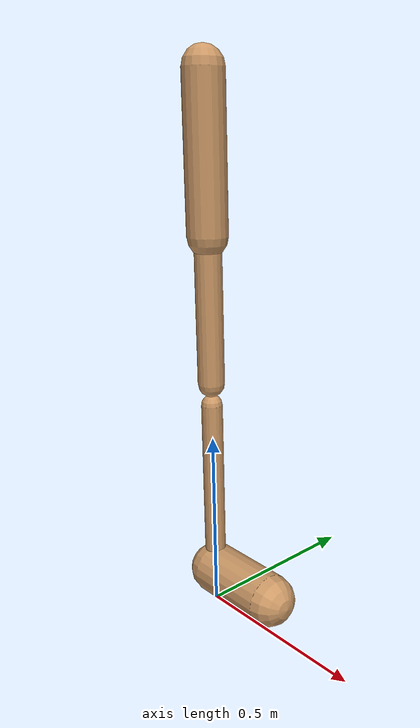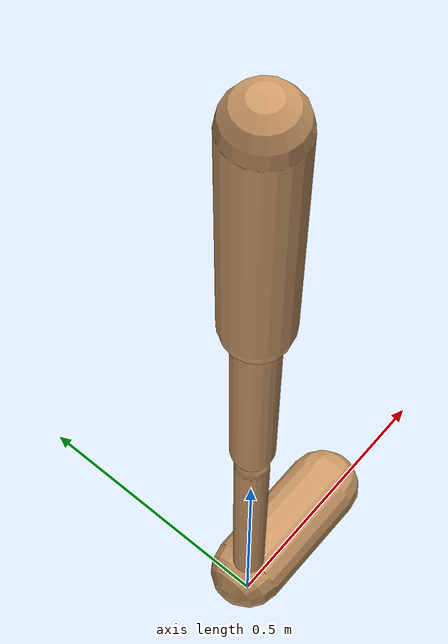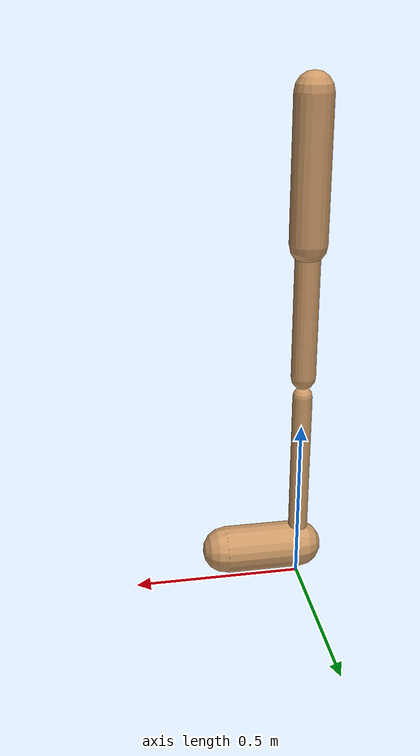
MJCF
<mujoco model="walker2d">
  <compiler angle="degree" coordinate="global" inertiafromgeom="true" />
  <default>
    <joint armature="0.01" damping=".1" limited="true" />
    <geom conaffinity="0" condim="3" contype="1" density="1000" friction="0.8 .1 .1" rgba="0.8 0.6 .4 1" />
  </default>
  <option integrator="RK4" timestep="0.002" />
  <worldbody>

    <body name="torso" pos="0 0 -0.1266126375839607">
      <joint armature="0" axis="1 0 0" damping="0" limited="false" name="ignorex" pos="0 0 0" stiffness="0" type="slide" />
      <joint armature="0" axis="0 0 1" damping="0" limited="false" name="ignorez" pos="0 0 0" ref="1.25" stiffness="0" type="slide" />
      <joint armature="0" axis="0 1 0" damping="0" limited="false" name="ignorey" pos="0 0 0" stiffness="0" type="hinge" />
      <geom fromto="0 0 1.45 0 0 1.05" name="torso_geom" size="0.053419051327064586" type="capsule" />
      <body name="thigh">
        <joint axis="0 -1 0" name="thigh_joint" pos="0 0 1.05" range="-150 0" type="hinge" />
        <geom fromto="0.0 0.0 1.05 0.0 0.0 0.6599744072766129" name="thigh_geom" size="0.03586514681574965" type="capsule" />
        <body name="leg" pos="0.0 0.0 0.05997440727661296">
          <joint axis="0 -1 0" name="leg_joint" pos="0 0 0.6" range="-150 0" type="hinge" />
          <geom fromto="0.0 0.0 0.6 0.0 0.0 0.16663823030734776" name="leg_geom" size="0.02869211745259972" type="capsule" />
          <body name="foot" pos="0.0 0.0 0.06663823030734775">
            <joint axis="0 -1 0" name="foot_joint" pos="0 0 0.1" range="-45 45" type="hinge" />
            <geom fromto="-0.0 0.0 0.10000000000000002 0.22385151334280293 0.0 0.10000000000000002" name="foot_geom" size="0.07041534538807133" type="capsule" />
          </body>
        </body>
      </body>

      <body name="thigh_left">
        <joint axis="0 -1 0" name="thigh_left_joint" pos="0 0 1.05" range="-150 0" type="hinge" />
        <geom fromto="0.0 0.0 1.05 0.0 0.0 0.6599744072766129" name="thigh_left_geom" rgba=".7 .3 .6 1" size="0.03586514681574965" type="capsule" />
        <body name="leg_left" pos="0.0 0.0 0.05997440727661296">
          <joint axis="0 -1 0" name="leg_left_joint" pos="0 0 0.6" range="-150 0" type="hinge" />
          <geom fromto="0.0 0.0 0.6 0.0 0.0 0.16663823030734776" name="leg_left_geom" rgba=".7 .3 .6 1" size="0.02869211745259972" type="capsule" />
          <body name="foot_left" pos="0.0 0.0 0.06663823030734775">
            <joint axis="0 -1 0" name="foot_left_joint" pos="0 0 0.1" range="-45 45" type="hinge" />
            <geom fromto="-0.0 0.0 0.10000000000000002 0.22385151334280293 0.0 0.10000000000000002" name="foot_left_geom" rgba=".7 .3 .6 1" size="0.07041534538807133" type="capsule" />
          </body>
        </body>
      </body>
    </body>
  </worldbody>
  <actuator>

    <motor ctrllimited="true" ctrlrange="-1.0 1.0" gear="100" joint="thigh_joint" />
    <motor ctrllimited="true" ctrlrange="-1.0 1.0" gear="100" joint="leg_joint" />
    <motor ctrllimited="true" ctrlrange="-1.0 1.0" gear="100" joint="foot_joint" />
    <motor ctrllimited="true" ctrlrange="-1.0 1.0" gear="100" joint="thigh_left_joint" />
    <motor ctrllimited="true" ctrlrange="-1.0 1.0" gear="100" joint="leg_left_joint" />
    <motor ctrllimited="true" ctrlrange="-1.0 1.0" gear="100" joint="foot_left_joint" />

  </actuator>
</mujoco>
